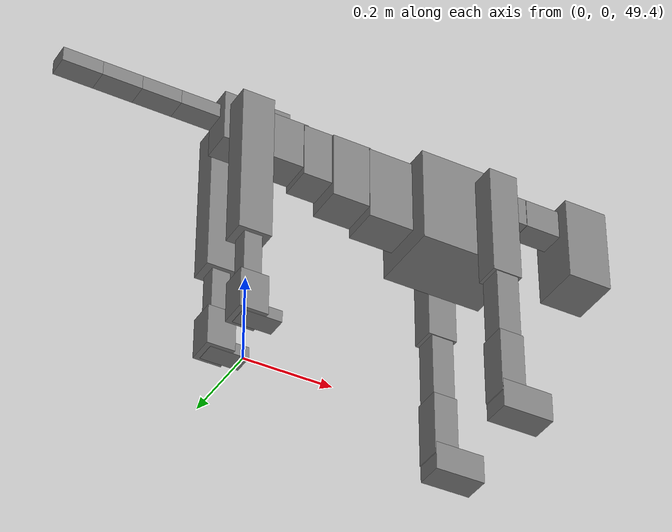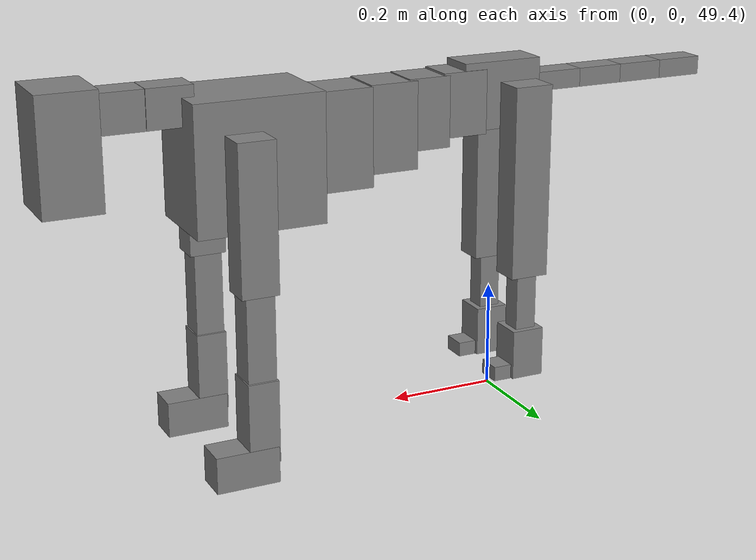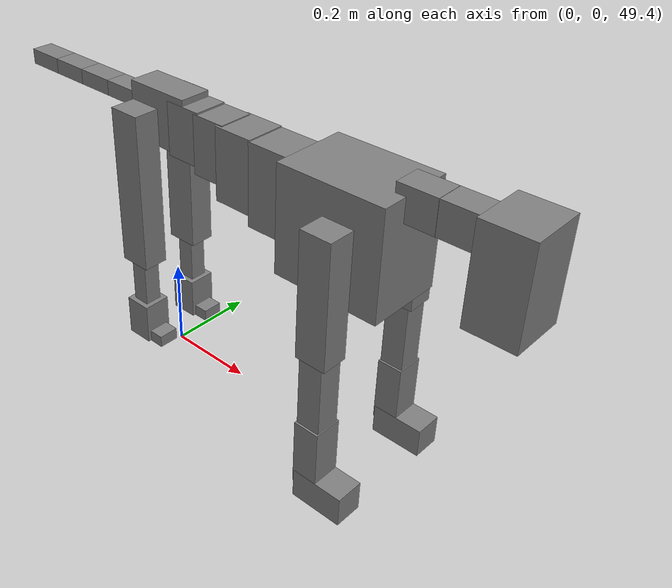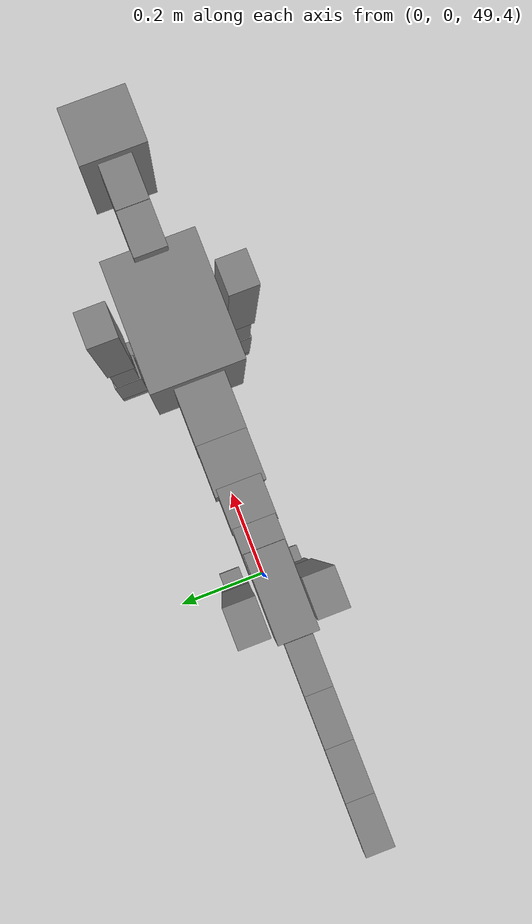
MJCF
<mujoco model="dog">

    <default>
        <joint armature="0.02" stiffness="1" damping="0.2" limited="true"/>
        <geom condim="3" friction="1 0.05 0.05" margin="0.01"/>
        <motor ctrllimited="true" ctrlrange="-1.0 1.0" forcelimited="true" gear="50"/>
    </default>

    <compiler inertiafromgeom="true" angle="radian"/>

    <option timestep="0.016" iterations="50" tolerance="1e-10" solver="Newton" jacobian="dense" cone="pyramidal"/>

    <size nconmax="20000" njmax="60000" nstack="5000000"/>
    <visual>
        <map force="0.1" zfar="30"/>
        <rgba haze="0.15 0.25 0.35 1"/>
        <quality shadowsize="2048"/>
        <global offwidth="800" offheight="800"/>
    </visual>

    <asset>
        <texture type="skybox" builtin="gradient" rgb1="0.3 0.5 0.7" rgb2="0 0 0" width="512" height="512"/>
        <texture name="texplane" type="2d" builtin="checker" rgb1=".2 .3 .4" rgb2=".1 0.15 0.2" width="512" height="512"
                 mark="cross" markrgb=".8 .8 .8"/>
        <texture name="texgeom" type="cube" builtin="flat" mark="cross" width="127" height="1278" rgb1="0.8 0.6 0.4"
                 rgb2="0.8 0.6 0.4" markrgb="1 1 1" random="0.01"/>

        <material name="matplane" reflectance="0.3" texture="texplane" texrepeat="1 1" texuniform="true"/>
        <material name="matgeom" texture="texgeom" texuniform="true" rgba="0.8 0.6 .4 1"/>
    </asset>

    <worldbody>
        <geom name="floor" pos="0 0 0" size="0 0 .25" type="plane" material="matplane" condim="3"/>

        <light directional="false" diffuse=".2 .2 .2" specular="0 0 0" pos="0 0 5" dir="0 0 -1" castshadow="false"/>
        <light mode="targetbodycom" target="torso" directional="false" diffuse=".8 .8 .8" specular="0.3 0.3 0.3"
               pos="0 0 4.0" dir="0 0 -1"/>

        <body name="root" pos="0 0 50">
            <freejoint name="root_1"/>
            <geom type="box" pos="0 0 -0.02" size="0.0774  0.0358  0.063" density="2030"/>

            <body name="spine1" pos="0.054 0 0">
                <joint name="spine1_y" axis="0 1 0" range="0 0.7" limited="true"/>
                <geom type="box" pos="0.02375 0 -0.03" size="0.04375  0.0375  0.05985" density="2030"/>

                <body name="spine2" pos="0.0612 0 0">
                    <joint name="spine2_y" axis="0 1 0" range="-0.15 0.15" limited="true"/>
                    <geom type="box" pos="0.03555  0  -0.04" size="0.04055  0.039  0.06615" density="2030"/>

                    <body name="spine3" pos="0.0730 0 0">
                        <joint name="spine3_y" axis="0 1 0" range="-0.15 0.15" limited="true"/>
                        <geom type="box" pos="0.03555  0  -0.057" size="0.04555  0.0445  0.081" density="2030"/>

                        <body name="spine4" pos="0.0780 0 0">
                            <joint name="spine4_y" axis="0 1 0" range="-0.15 0.15" limited="true"/>
                            <geom type="box" pos="0.05265  0  -0.07" size="0.05265  0.045  0.09135" density="2030"/>

                            <body name="torso" pos="0.1082 0 0">
                                <joint name="torso_y" axis="0 1 0" range="-0.15 0.15" limited="true"/>
                                <geom type="box" pos="0.11925  0  -0.085" size="0.11925  0.085  0.11745"
                                      density="2030"/>

                                <body name="neck1" pos="0.2160  0   0.0180">
                                    <joint name="neck1_y" axis="0 1 0" range="-1.2  -1" limited="true"/>
                                    <geom type="box" pos="0.0423  0  0" size="0.0423  0.03  0.036" density="2325"/>

                                    <body name="neck2" pos="0.0853  0  0">
                                        <joint name="neck2_y" axis="0 1 0" range="0.1  0" limited="true"/>
                                        <geom type="box" pos="0.0423  0  0" size="0.0423  0.03  0.036" density="2325"/>

                                        <body name="head" pos="0.0853  0  0">
                                            <joint name="head_y" axis="0 1 0" range="-0.3  -0.2" limited="true"/>
                                            <geom type="box" pos="0.0531  0  -0.055" size="0.0531  0.06  0.1044"
                                                  density="4030"/>

                                        </body>
                                    </body>
                                </body>

                                <body name="front_shoulder" pos="0.156  0   -0.0480">
                                    <joint name="front_shoulder_y" axis="0 1 0" range="-1 1.5" limited="true"/>
                                    <geom type="box" pos="0 0.13 -0.1089" size="0.0343  0.0293  0.1356" density="1158"/>
                                    <geom type="box" pos="0 -0.13 -0.1089" size="0.0343  0.0293  0.1356"
                                          density="1158"/>

                                    <body name="front_elbow" pos="0  0  -0.2179">
                                        <joint name="front_elbow_y" axis="0 1 0" range="-2 0" limited="true"/>
                                        <geom type="box" pos="0 0.13 -0.0968" size="0.0263  0.0269  0.0968"
                                              density="1081"/>
                                        <geom type="box" pos="0 -0.13 -0.0968" size="0.0263  0.0269  0.0968"
                                              density="1081"/>

                                        <body name="front_wrist" pos="0  0  -0.1937">
                                            <joint name="front_wrist_y" axis="0 1 0" range="-0.2 0" limited="true"/>
                                            <geom type="box" pos="0 0.13 -0.0628" size="0.0284  0.0316  0.0760"
                                                  density="1664"/>
                                            <geom type="box" pos="0 -0.13 -0.0628" size="0.0284  0.0316  0.0760"
                                                  density="1664"/>

                                            <body name="front_finger_end" pos="0  0  -0.1257">
                                                <joint name="front_finger_y" axis="0 1 0" range="-0.4 1"
                                                       limited="true"/>
                                                <geom type="box" pos="0.0318  0.13  -0.0186"
                                                      size="0.0583  0.0318  0.0336" density="1515"/>
                                                <geom type="box" pos="0.0318  -0.13  -0.0186"
                                                      size="0.0583  0.0318  0.0336" density="1515"/>

                                            </body>

                                        </body>
                                    </body>
                                </body>

                            </body>
                        </body>
                    </body>
                </body>
            </body>

            <body name="back_hip" pos="-0.03 0 -0.018">
                <joint name="back_hip_y" axis="0 1 0" range="-1.5 0.3" limited="true"/>
                <geom type="box" pos="0 0.07 -0.1588" size="0.0371  0.0291  0.1816" density="1154"/>
                <geom type="box" pos="0 -0.07 -0.1588" size="0.0371  0.0291  0.1816" density="1154"/>

                <body name="back_knee" pos="0  0  -0.3176">
                    <joint name="back_knee_y" axis="0 1 0" range="0 2.8" limited="true"/>
                    <geom type="box" pos="0 0.07 -0.0694" size="0.0201  0.0198  0.0849" density="1227"/>
                    <geom type="box" pos="0 -0.07 -0.0694" size="0.0201  0.0198  0.0849" density="1227"/>

                    <body name="back_ankle" pos="0  0  -0.1388">
                        <joint name="back_ankle_y" axis="0 1 0" range="-2.2 0" limited="true"/>
                        <geom type="box" pos="0 0.07 -0.0357" size="0.0315  0.0315  0.0470" density="1284"/>
                        <geom type="box" pos="0 -0.07 -0.0357" size="0.0315  0.0315  0.0470" density="1284"/>

                        <body name="back_toe_end" pos="0  0  -0.0714">
                            <joint name="back_toe_y" axis="0 1 0" range="-0.4 1" limited="true"/>
                            <geom type="box" pos="0.0235  0.07  0.0012" size="0.0430  0.0235  0.0138" density="1515"/>
                            <geom type="box" pos="0.0235  -0.07  0.0012" size="0.0430  0.0235  0.0138" density="1515"/>

                        </body>
                    </body>
                </body>
            </body>

            <body name="tail1" pos="-0.074 0 -0.006">
                <joint name="tail1_y" axis="0 1 0" range="-0.2 0.2" limited="true"/>
                <geom type="box" pos="-0.0536  0  0" size="0.045  0.025  0.0175" density="1587"/>

                <body name="tail2" pos="-0.09 0 0">
                    <joint name="tail2_y" axis="0 1 0" range="-0.2 0.2" limited="true"/>
                    <geom type="box" pos="-0.0536  0  0" size="0.045  0.025  0.0175" density="1587"/>

                    <body name="tail3" pos="-0.09 0 0">
                        <joint name="tail3_y" axis="0 1 0" range="-0.2 0.2" limited="true"/>
                        <geom type="box" pos="-0.0536  0  0" size="0.045  0.025  0.0175" density="1587"/>

                        <body name="tail4" pos="-0.09 0 0">
                            <joint name="tail4_y" axis="0 1 0" range="-0.2 0.2" limited="true"/>
                            <geom type="box" pos="-0.0536  0  0" size="0.045  0.025  0.0175" density="1587"/>

                        </body>
                    </body>
                </body>
            </body>
        </body>
    </worldbody>

    <actuator>
        <motor joint="spine1_y" forcerange="-150 150     "/>
        <motor joint="spine2_y" forcerange="-150 150     "/>
        <motor joint="spine3_y" forcerange="-150 150     "/>
        <motor joint="spine4_y" forcerange="-150 150     "/>
        <motor joint="torso_y" forcerange="-150 150     "/>
        <motor joint="neck1_y" forcerange="-100 100       "/>
        <motor joint="neck2_y" forcerange="-100 100       "/>
        <motor joint="head_y" forcerange="-150 150       "/>
        <motor joint="front_shoulder_y" forcerange="-113.58 181.83"/>
        <motor joint="front_elbow_y" forcerange="-156.75 138.66"/>
        <motor joint="front_wrist_y" forcerange="-111.97 140.69"/>
        <motor joint="front_finger_y" forcerange="-51.75 77.85"/>
        <motor joint="back_hip_y" forcerange="-364.79 223.13"/>
        <motor joint="back_knee_y" forcerange="-268.11 220.00"/>
        <motor joint="back_angle_y" forcerange="-218.71 184.74"/>
        <motor joint="back_toe_y" forcerange="-80.14 27.46"/>
        <motor joint="tail1_y" forcerange="-50 50     "/>
        <motor joint="tail2_y" forcerange="-50 50     "/>
        <motor joint="tail3_y" forcerange="-50 50     "/>
        <motor joint="tail4_y" forcerange="-50 50     "/>
    </actuator>
</mujoco>
